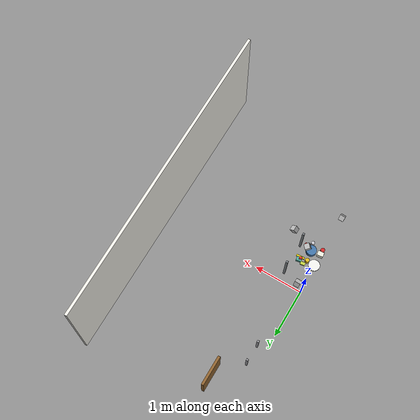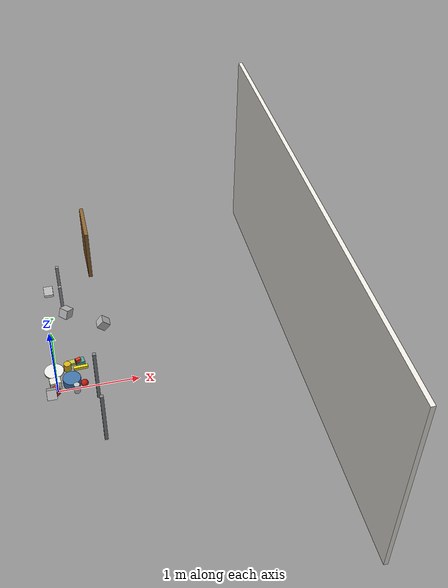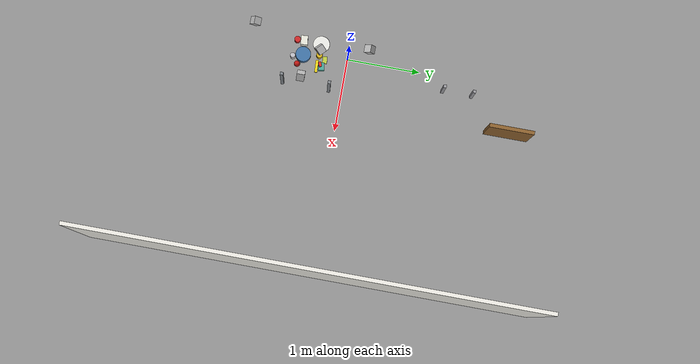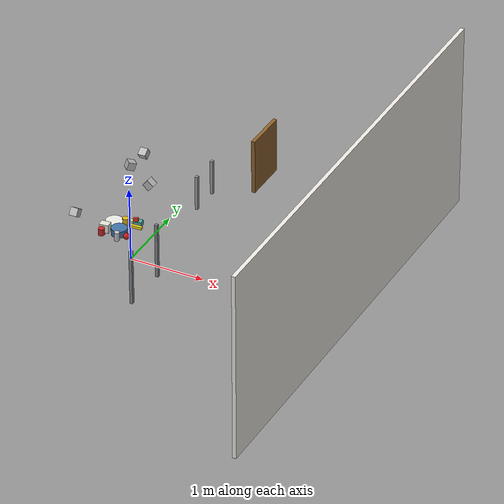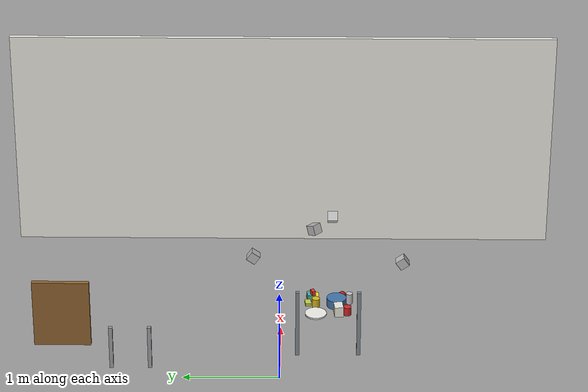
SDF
<sdf version="1.10">
 <world name="bps_room">
  <model name="wall_east">
   <static>true</static>
   <pose>3 0 1.25 0 0 0</pose>
   <link name="link">
    <collision name="collision">
     <geometry><box><size>0.050000000000000003 6 2.5</size></box></geometry>
    </collision>
    <visual name="visual">
     <geometry><box><size>0.050000000000000003 6 2.5</size></box></geometry>
     <material>
      <ambient>0.930000007 0.920000017 0.889999986 1</ambient>
      <diffuse>0.930000007 0.920000017 0.889999986 1</diffuse>
     </material>
    </visual>
    <inertial>
     <mass>1</mass>
     <inertia><ixx>1</ixx><ixy>0</ixy><ixz>0</ixz><iyy>1</iyy><iyz>0</iyz><izz>1</izz></inertia>
    </inertial>
   </link>
  </model>
  <model name="desk_leg_right">
   <static>true</static>
   <pose>0.65000000000000002 2.2999999999999998 0.375 0 0 0</pose>
   <link name="link">
    <collision name="collision">
     <geometry><box><size>0.050000000000000003 0.59999999999999998 0.75</size></box></geometry>
    </collision>
    <visual name="visual">
     <geometry><box><size>0.050000000000000003 0.59999999999999998 0.75</size></box></geometry>
     <material>
      <ambient>0.550000012 0.379999995 0.180000007 1</ambient>
      <diffuse>0.550000012 0.379999995 0.180000007 1</diffuse>
     </material>
    </visual>
    <inertial>
     <mass>1</mass>
     <inertia><ixx>1</ixx><ixy>0</ixy><ixz>0</ixz><iyy>1</iyy><iyz>0</iyz><izz>1</izz></inertia>
    </inertial>
   </link>
  </model>
  <model name="chair_leg_fr">
   <static>true</static>
   <pose>0.20000000000000001 1.3500000000000001 0.23999999999999999 0 0 0</pose>
   <link name="link">
    <collision name="collision">
     <geometry><box><size>0.040000000000000001 0.040000000000000001 0.47999999999999998</size></box></geometry>
    </collision>
    <visual name="visual">
     <geometry><box><size>0.040000000000000001 0.040000000000000001 0.47999999999999998</size></box></geometry>
     <material>
      <ambient>0.600000024 0.600000024 0.620000005 1</ambient>
      <diffuse>0.600000024 0.600000024 0.620000005 1</diffuse>
     </material>
    </visual>
    <inertial>
     <mass>1</mass>
     <inertia><ixx>1</ixx><ixy>0</ixy><ixz>0</ixz><iyy>1</iyy><iyz>0</iyz><izz>1</izz></inertia>
    </inertial>
   </link>
  </model>
  <model name="chair_leg_br">
   <static>true</static>
   <pose>0.20000000000000001 1.75 0.23999999999999999 0 0 0</pose>
   <link name="link">
    <collision name="collision">
     <geometry><box><size>0.040000000000000001 0.040000000000000001 0.47999999999999998</size></box></geometry>
    </collision>
    <visual name="visual">
     <geometry><box><size>0.040000000000000001 0.040000000000000001 0.47999999999999998</size></box></geometry>
     <material>
      <ambient>0.600000024 0.600000024 0.620000005 1</ambient>
      <diffuse>0.600000024 0.600000024 0.620000005 1</diffuse>
     </material>
    </visual>
    <inertial>
     <mass>1</mass>
     <inertia><ixx>1</ixx><ixy>0</ixy><ixz>0</ixz><iyy>1</iyy><iyz>0</iyz><izz>1</izz></inertia>
    </inertial>
   </link>
  </model>
  <model name="table_leg_fr">
   <static>true</static>
   <pose>0.46999999999999997 -0.81999999999999995 0.375 0 0 0</pose>
   <link name="link">
    <collision name="collision">
     <geometry><box><size>0.040000000000000001 0.040000000000000001 0.75</size></box></geometry>
    </collision>
    <visual name="visual">
     <geometry><box><size>0.040000000000000001 0.040000000000000001 0.75</size></box></geometry>
     <material>
      <ambient>0.5 0.519999981 0.540000021 1</ambient>
      <diffuse>0.5 0.519999981 0.540000021 1</diffuse>
     </material>
    </visual>
    <inertial>
     <mass>1</mass>
     <inertia><ixx>1</ixx><ixy>0</ixy><ixz>0</ixz><iyy>1</iyy><iyz>0</iyz><izz>1</izz></inertia>
    </inertial>
   </link>
  </model>
  <model name="table_leg_br">
   <static>true</static>
   <pose>0.46999999999999997 -0.17999999999999999 0.375 0 0 0</pose>
   <link name="link">
    <collision name="collision">
     <geometry><box><size>0.040000000000000001 0.040000000000000001 0.75</size></box></geometry>
    </collision>
    <visual name="visual">
     <geometry><box><size>0.040000000000000001 0.040000000000000001 0.75</size></box></geometry>
     <material>
      <ambient>0.5 0.519999981 0.540000021 1</ambient>
      <diffuse>0.5 0.519999981 0.540000021 1</diffuse>
     </material>
    </visual>
    <inertial>
     <mass>1</mass>
     <inertia><ixx>1</ixx><ixy>0</ixy><ixz>0</ixz><iyy>1</iyy><iyz>0</iyz><izz>1</izz></inertia>
    </inertial>
   </link>
  </model>
  <model name="obj_tissue_box">
   <static>false</static>
   <pose>0 -0.59999999999999998 0.82499999999999996 0 0 0.09999999999999995</pose>
   <link name="link">
    <collision name="collision">
     <geometry><box><size>0.12 0.089999999999999997 0.11</size></box></geometry>
    </collision>
    <visual name="visual">
     <geometry><box><size>0.12 0.089999999999999997 0.11</size></box></geometry>
     <material>
      <ambient>0.899999976 0.899999976 0.850000024 1</ambient>
      <diffuse>0.899999976 0.899999976 0.850000024 1</diffuse>
     </material>
     <plugin name="gz::sim::systems::Label" filename="gz-sim-label-system"><label>4</label></plugin>
    </visual>
    <inertial>
     <mass>1</mass>
     <inertia><ixx>1</ixx><ixy>0</ixy><ixz>0</ixz><iyy>1</iyy><iyz>0</iyz><izz>1</izz></inertia>
    </inertial>
    <sensor name="obj_tissue_box_contact_sensor" type="contact">
     <contact><collision>collision</collision></contact>
     <update_rate>30</update_rate>
     <always_on>true</always_on>
    </sensor>
   </link>
  </model>
  <model name="obj_cup">
   <static>false</static>
   <pose>0 -0.68999999999999995 0.81499999999999995 0 0 0</pose>
   <link name="link">
    <collision name="collision">
     <geometry>
      <cylinder><radius>0.040000000000000001</radius><length>0.089999999999999997</length></cylinder>
     </geometry>
    </collision>
    <visual name="visual">
     <geometry>
      <cylinder><radius>0.040000000000000001</radius><length>0.089999999999999997</length></cylinder>
     </geometry>
     <material>
      <ambient>0.800000012 0.150000006 0.150000006 1</ambient>
      <diffuse>0.800000012 0.150000006 0.150000006 1</diffuse>
      <specular>0.400000006 0.400000006 0.400000006 1</specular>
     </material>
     <plugin name="gz::sim::systems::Label" filename="gz-sim-label-system"><label>5</label></plugin>
    </visual>
    <inertial>
     <mass>1</mass>
     <inertia><ixx>1</ixx><ixy>0</ixy><ixz>0</ixz><iyy>1</iyy><iyz>0</iyz><izz>1</izz></inertia>
    </inertial>
    <sensor name="obj_cup_contact_sensor" type="contact">
     <contact><collision>collision</collision></contact>
     <update_rate>30</update_rate>
     <always_on>true</always_on>
    </sensor>
   </link>
  </model>
  <model name="obj_bowl">
   <static>false</static>
   <pose>0.18260000000000001 -0.58120000000000005 0.81499999999999995 0 0 0</pose>
   <link name="link">
    <collision name="collision">
     <geometry>
      <cylinder><radius>0.10000000000000001</radius><length>0.089999999999999997</length></cylinder>
     </geometry>
    </collision>
    <visual name="visual">
     <geometry>
      <cylinder><radius>0.10000000000000001</radius><length>0.089999999999999997</length></cylinder>
     </geometry>
     <material>
      <ambient>0.25 0.449999988 0.649999976 1</ambient>
      <diffuse>0.25 0.449999988 0.649999976 1</diffuse>
      <specular>0.300000012 0.300000012 0.300000012 1</specular>
     </material>
     <plugin name="gz::sim::systems::Label" filename="gz-sim-label-system"><label>6</label></plugin>
    </visual>
    <inertial>
     <mass>1</mass>
     <inertia><ixx>1</ixx><ixy>0</ixy><ixz>0</ixz><iyy>1</iyy><iyz>0</iyz><izz>1</izz></inertia>
    </inertial>
    <sensor name="obj_bowl_contact_sensor" type="contact">
     <contact><collision>collision</collision></contact>
     <update_rate>30</update_rate>
     <always_on>true</always_on>
    </sensor>
   </link>
  </model>
  <model name="obj_apple">
   <static>false</static>
   <pose>0.315 -0.6401 0.81000000000000005 0 0 0</pose>
   <link name="link">
    <collision name="collision">
     <geometry><sphere><radius>0.040000000000000001</radius></sphere></geometry>
    </collision>
    <visual name="visual">
     <geometry><sphere><radius>0.040000000000000001</radius></sphere></geometry>
     <material>
      <ambient>0.75 0.100000001 0.0799999982 1</ambient>
      <diffuse>0.75 0.100000001 0.0799999982 1</diffuse>
      <specular>0.5 0.5 0.5 1</specular>
     </material>
     <plugin name="gz::sim::systems::Label" filename="gz-sim-label-system"><label>7</label></plugin>
    </visual>
    <inertial>
     <mass>1</mass>
     <inertia><ixx>1</ixx><ixy>0</ixy><ixz>0</ixz><iyy>1</iyy><iyz>0</iyz><izz>1</izz></inertia>
    </inertial>
    <sensor name="obj_apple_contact_sensor" type="contact">
     <contact><collision>collision</collision></contact>
     <update_rate>30</update_rate>
     <always_on>true</always_on>
    </sensor>
   </link>
  </model>
  <model name="obj_can">
   <static>false</static>
   <pose>0.22409999999999999 -0.71289999999999998 0.82750000000000001 0 0 0</pose>
   <link name="link">
    <collision name="collision">
     <geometry><cylinder><radius>0.033000000000000002</radius><length>0.115</length></cylinder></geometry>
    </collision>
    <visual name="visual">
     <geometry><cylinder><radius>0.033000000000000002</radius><length>0.115</length></cylinder></geometry>
     <material>
      <ambient>0.75 0.75 0.779999971 1</ambient>
      <diffuse>0.75 0.75 0.779999971 1</diffuse>
      <specular>0.699999988 0.699999988 0.699999988 1</specular>
     </material>
     <plugin name="gz::sim::systems::Label" filename="gz-sim-label-system"><label>8</label></plugin>
    </visual>
    <inertial>
     <mass>1</mass>
     <inertia><ixx>1</ixx><ixy>0</ixy><ixz>0</ixz><iyy>1</iyy><iyz>0</iyz><izz>1</izz></inertia>
    </inertial>
    <sensor name="obj_can_contact_sensor" type="contact">
     <contact><collision>collision</collision></contact>
     <update_rate>30</update_rate>
     <always_on>true</always_on>
    </sensor>
   </link>
  </model>
  <model name="obj_plate">
   <static>false</static>
   <pose>0 -0.37 0.77749999999999997 0 0 0</pose>
   <link name="link">
    <collision name="collision">
     <geometry><cylinder><radius>0.11</radius><length>0.014999999999999999</length></cylinder></geometry>
    </collision>
    <visual name="visual">
     <geometry><cylinder><radius>0.11</radius><length>0.014999999999999999</length></cylinder></geometry>
     <material>
      <ambient>0.920000017 0.920000017 0.899999976 1</ambient>
      <diffuse>0.920000017 0.920000017 0.899999976 1</diffuse>
     </material>
     <plugin name="gz::sim::systems::Label" filename="gz-sim-label-system"><label>12</label></plugin>
    </visual>
    <inertial>
     <mass>1</mass>
     <inertia><ixx>1</ixx><ixy>0</ixy><ixz>0</ixz><iyy>1</iyy><iyz>0</iyz><izz>1</izz></inertia>
    </inertial>
    <sensor name="obj_plate_contact_sensor" type="contact">
     <contact><collision>collision</collision></contact>
     <update_rate>30</update_rate>
     <always_on>true</always_on>
    </sensor>
   </link>
  </model>
  <model name="obj_mug">
   <static>false</static>
   <pose>0.155 -0.37 0.8175 0 0 0</pose>
   <link name="link">
    <collision name="collision">
     <geometry>
      <cylinder><radius>0.040000000000000001</radius><length>0.095000000000000001</length></cylinder>
     </geometry>
    </collision>
    <visual name="visual">
     <geometry>
      <cylinder><radius>0.040000000000000001</radius><length>0.095000000000000001</length></cylinder>
     </geometry>
     <material>
      <ambient>0.850000024 0.699999988 0.100000001 1</ambient>
      <diffuse>0.850000024 0.699999988 0.100000001 1</diffuse>
      <specular>0.300000012 0.300000012 0.300000012 1</specular>
     </material>
     <plugin name="gz::sim::systems::Label" filename="gz-sim-label-system"><label>13</label></plugin>
    </visual>
    <inertial>
     <mass>1</mass>
     <inertia><ixx>1</ixx><ixy>0</ixy><ixz>0</ixz><iyy>1</iyy><iyz>0</iyz><izz>1</izz></inertia>
    </inertial>
    <sensor name="obj_mug_contact_sensor" type="contact">
     <contact><collision>collision</collision></contact>
     <update_rate>30</update_rate>
     <always_on>true</always_on>
    </sensor>
   </link>
  </model>
  <model name="obj_sponge">
   <static>false</static>
   <pose>0.20000000000000001 -0.28999999999999998 0.78500000000000003 0 0 0.09999999999999995</pose>
   <link name="link">
    <collision name="collision">
     <geometry><box><size>0.089999999999999997 0.059999999999999998 0.029999999999999999</size></box></geometry>
    </collision>
    <visual name="visual">
     <geometry><box><size>0.089999999999999997 0.059999999999999998 0.029999999999999999</size></box></geometry>
     <material><ambient>0.75 0.800000012 0.25 1</ambient><diffuse>0.75 0.800000012 0.25 1</diffuse></material>
     <plugin name="gz::sim::systems::Label" filename="gz-sim-label-system"><label>14</label></plugin>
    </visual>
    <inertial>
     <mass>1</mass>
     <inertia><ixx>1</ixx><ixy>0</ixy><ixz>0</ixz><iyy>1</iyy><iyz>0</iyz><izz>1</izz></inertia>
    </inertial>
    <sensor name="obj_sponge_contact_sensor" type="contact">
     <contact><collision>collision</collision></contact>
     <update_rate>30</update_rate>
     <always_on>true</always_on>
    </sensor>
   </link>
  </model>
  <model name="obj_container">
   <static>false</static>
   <pose>0.29999999999999999 -0.32000000000000001 0.80500000000000005 0 0 0.14999999999999988</pose>
   <link name="link">
    <collision name="collision">
     <geometry><box><size>0.10000000000000001 0.080000000000000002 0.070000000000000007</size></box></geometry>
    </collision>
    <visual name="visual">
     <geometry><box><size>0.10000000000000001 0.080000000000000002 0.070000000000000007</size></box></geometry>
     <material>
      <ambient>0.300000012 0.649999976 0.600000024 1</ambient>
      <diffuse>0.300000012 0.649999976 0.600000024 1</diffuse>
      <specular>0.400000006 0.400000006 0.400000006 1</specular>
     </material>
     <plugin name="gz::sim::systems::Label" filename="gz-sim-label-system"><label>15</label></plugin>
    </visual>
    <inertial>
     <mass>1</mass>
     <inertia><ixx>1</ixx><ixy>0</ixy><ixz>0</ixz><iyy>1</iyy><iyz>0</iyz><izz>1</izz></inertia>
    </inertial>
    <sensor name="obj_container_contact_sensor" type="contact">
     <contact><collision>collision</collision></contact>
     <update_rate>30</update_rate>
     <always_on>true</always_on>
    </sensor>
   </link>
  </model>
  <model name="obj_toy">
   <static>false</static>
   <pose>0.28000000000000003 -0.34000000000000002 0.86250000000000004 0 0 0.39999999999999997</pose>
   <link name="link">
    <collision name="collision">
     <geometry><box><size>0.059999999999999998 0.035000000000000003 0.044999999999999998</size></box></geometry>
    </collision>
    <visual name="visual">
     <geometry><box><size>0.059999999999999998 0.035000000000000003 0.044999999999999998</size></box></geometry>
     <material>
      <ambient>0.899999976 0.200000003 0.150000006 1</ambient>
      <diffuse>0.899999976 0.200000003 0.150000006 1</diffuse>
      <specular>0.5 0.5 0.5 1</specular>
     </material>
     <plugin name="gz::sim::systems::Label" filename="gz-sim-label-system"><label>16</label></plugin>
    </visual>
    <inertial>
     <mass>1</mass>
     <inertia><ixx>1</ixx><ixy>0</ixy><ixz>0</ixz><iyy>1</iyy><iyz>0</iyz><izz>1</izz></inertia>
    </inertial>
    <sensor name="obj_toy_contact_sensor" type="contact">
     <contact><collision>collision</collision></contact>
     <update_rate>30</update_rate>
     <always_on>true</always_on>
    </sensor>
   </link>
  </model>
  <model name="obj_banana">
   <static>false</static>
   <pose>0.29999999999999999 -0.38250000000000001 0.78749999999999998 0 0 0.049999999999999989</pose>
   <link name="link">
    <collision name="collision">
     <geometry><box><size>0.16 0.035000000000000003 0.035000000000000003</size></box></geometry>
    </collision>
    <visual name="visual">
     <geometry><box><size>0.16 0.035000000000000003 0.035000000000000003</size></box></geometry>
     <material>
      <ambient>0.949999988 0.850000024 0.100000001 1</ambient>
      <diffuse>0.949999988 0.850000024 0.100000001 1</diffuse>
      <specular>0.200000003 0.200000003 0.200000003 1</specular>
     </material>
     <plugin name="gz::sim::systems::Label" filename="gz-sim-label-system"><label>17</label></plugin>
    </visual>
    <inertial>
     <mass>1</mass>
     <inertia><ixx>1</ixx><ixy>0</ixy><ixz>0</ixz><iyy>1</iyy><iyz>0</iyz><izz>1</izz></inertia>
    </inertial>
    <sensor name="obj_banana_contact_sensor" type="contact">
     <contact><collision>collision</collision></contact>
     <update_rate>30</update_rate>
     <always_on>true</always_on>
    </sensor>
   </link>
  </model>
  <model name="depth_camera_v2">
   <static>true</static>
   <pose>0.6610640802747747 -0.4859588235294118 1.582838560766037 0.0 0.8726646259971648 3.141592653589793</pose>
   <link name="link">
    <pose>0.050000000000000003 0.050000000000000003 0.050000000000000003 0 0 0</pose>
    <inertial>
     <mass>0.10000000000000001</mass>
     <inertia>
      <ixx>0.00016666700000000001</ixx>
      <iyy>0.00016666700000000001</iyy>
      <izz>0.00016666700000000001</izz>
      <ixy>0</ixy>
      <ixz>0</ixz>
      <iyz>0</iyz>
     </inertia>
    </inertial>
    <collision name="collision">
     <geometry><box><size>0.10000000000000001 0.10000000000000001 0.10000000000000001</size></box></geometry>
    </collision>
    <visual name="visual">
     <geometry><box><size>0.10000000000000001 0.10000000000000001 0.10000000000000001</size></box></geometry>
    </visual>
    <sensor name="depth_camera2" type="depth_camera">
     <topic>depth_camera_v2</topic>
     <update_rate>10</update_rate>
     <enable_metrics>false</enable_metrics>
     <camera>
      <horizontal_fov>1.2</horizontal_fov>
      <image>
       <width>640</width>
       <height>480</height>
       <format>R_FLOAT32</format>
       <anti_aliasing>4</anti_aliasing>
      </image>
      <camera_info_topic>__default__</camera_info_topic>
      <triggered>false</triggered>
      <clip><near>0.10000000000000001</near><far>2</far></clip>
      <save enabled="false"><path>__default__</path></save>
      <visibility_mask>4294967295</visibility_mask>
      <noise><type>none</type><mean>0</mean><stddev>0</stddev></noise>
      <distortion><k1>0</k1><k2>0</k2><k3>0</k3><p1>0</p1><p2>0</p2><center>0.5 0.5</center></distortion>
      <lens>
       <type>stereographic</type>
       <scale_to_hfov>true</scale_to_hfov>
       <cutoff_angle>1.5707963267948966</cutoff_angle>
       <env_texture_size>256</env_texture_size>
      </lens>
     </camera>
    </sensor>
    <sensor name="rgb_camera2" type="camera">
     <topic>rgb_camera_v2</topic>
     <update_rate>10</update_rate>
     <enable_metrics>false</enable_metrics>
     <camera>
      <horizontal_fov>1.2</horizontal_fov>
      <image><width>640</width><height>480</height><format>RGB_INT8</format><anti_aliasing>4</anti_aliasing></image>
      <camera_info_topic>__default__</camera_info_topic>
      <triggered>false</triggered>
      <clip><near>0.10000000000000001</near><far>2</far></clip>
      <save enabled="false"><path>__default__</path></save>
      <visibility_mask>4294967295</visibility_mask>
      <noise><type>none</type><mean>0</mean><stddev>0</stddev></noise>
      <distortion><k1>0</k1><k2>0</k2><k3>0</k3><p1>0</p1><p2>0</p2><center>0.5 0.5</center></distortion>
      <lens>
       <type>stereographic</type>
       <scale_to_hfov>true</scale_to_hfov>
       <cutoff_angle>1.5707963267948966</cutoff_angle>
       <env_texture_size>256</env_texture_size>
      </lens>
     </camera>
    </sensor>
    <sensor name="semantic_camera2" type="segmentation_camera">
     <topic>semantic_camera_v2</topic>
     <update_rate>10</update_rate>
     <enable_metrics>false</enable_metrics>
     <camera>
      <horizontal_fov>1.2</horizontal_fov>
      <image><width>640</width><height>480</height></image>
      <clip><near>0.1</near><far>100</far></clip>
      <segmentation_type>semantic</segmentation_type>
     </camera>
    </sensor>
   </link>
  </model>
  <model name="depth_camera_v3">
   <static>true</static>
   <pose>0.018276470588235345 0.33319322075958 1.390370553998105 -0.0 0.6108652381980154 -1.5707963267948968</pose>
   <link name="link">
    <pose>0.050000000000000003 0.050000000000000003 0.050000000000000003 0 0 0</pose>
    <inertial>
     <mass>0.10000000000000001</mass>
     <inertia>
      <ixx>0.00016666700000000001</ixx>
      <iyy>0.00016666700000000001</iyy>
      <izz>0.00016666700000000001</izz>
      <ixy>0</ixy>
      <ixz>0</ixz>
      <iyz>0</iyz>
     </inertia>
    </inertial>
    <collision name="collision">
     <geometry><box><size>0.10000000000000001 0.10000000000000001 0.10000000000000001</size></box></geometry>
    </collision>
    <visual name="visual">
     <geometry><box><size>0.10000000000000001 0.10000000000000001 0.10000000000000001</size></box></geometry>
    </visual>
    <sensor name="depth_camera3" type="depth_camera">
     <topic>depth_camera_v3</topic>
     <update_rate>10</update_rate>
     <enable_metrics>false</enable_metrics>
     <camera>
      <horizontal_fov>1.2</horizontal_fov>
      <image>
       <width>640</width>
       <height>480</height>
       <format>R_FLOAT32</format>
       <anti_aliasing>4</anti_aliasing>
      </image>
      <camera_info_topic>__default__</camera_info_topic>
      <triggered>false</triggered>
      <clip><near>0.10000000000000001</near><far>2</far></clip>
      <save enabled="false"><path>__default__</path></save>
      <visibility_mask>4294967295</visibility_mask>
      <noise><type>none</type><mean>0</mean><stddev>0</stddev></noise>
      <distortion><k1>0</k1><k2>0</k2><k3>0</k3><p1>0</p1><p2>0</p2><center>0.5 0.5</center></distortion>
      <lens>
       <type>stereographic</type>
       <scale_to_hfov>true</scale_to_hfov>
       <cutoff_angle>1.5707963267948966</cutoff_angle>
       <env_texture_size>256</env_texture_size>
      </lens>
     </camera>
    </sensor>
    <sensor name="rgb_camera3" type="camera">
     <topic>rgb_camera_v3</topic>
     <update_rate>10</update_rate>
     <enable_metrics>false</enable_metrics>
     <camera>
      <horizontal_fov>1.2</horizontal_fov>
      <image><width>640</width><height>480</height><format>RGB_INT8</format><anti_aliasing>4</anti_aliasing></image>
      <camera_info_topic>__default__</camera_info_topic>
      <triggered>false</triggered>
      <clip><near>0.10000000000000001</near><far>2</far></clip>
      <save enabled="false"><path>__default__</path></save>
      <visibility_mask>4294967295</visibility_mask>
      <noise><type>none</type><mean>0</mean><stddev>0</stddev></noise>
      <distortion><k1>0</k1><k2>0</k2><k3>0</k3><p1>0</p1><p2>0</p2><center>0.5 0.5</center></distortion>
      <lens>
       <type>stereographic</type>
       <scale_to_hfov>true</scale_to_hfov>
       <cutoff_angle>1.5707963267948966</cutoff_angle>
       <env_texture_size>256</env_texture_size>
      </lens>
     </camera>
    </sensor>
    <sensor name="semantic_camera3" type="segmentation_camera">
     <topic>semantic_camera_v3</topic>
     <update_rate>10</update_rate>
     <enable_metrics>false</enable_metrics>
     <camera>
      <horizontal_fov>1.2</horizontal_fov>
      <image><width>640</width><height>480</height></image>
      <clip><near>0.1</near><far>100</far></clip>
      <segmentation_type>semantic</segmentation_type>
     </camera>
    </sensor>
   </link>
  </model>
  <model name="depth_camera_v5">
   <static>true</static>
   <pose>0.018276470588235148 -1.3051108678184036 1.390370553998105 -0.0 0.6108652381980154 1.5707963267948963</pose>
   <link name="link">
    <pose>0.050000000000000003 0.050000000000000003 0.050000000000000003 0 0 0</pose>
    <inertial>
     <mass>0.10000000000000001</mass>
     <inertia>
      <ixx>0.00016666700000000001</ixx>
      <iyy>0.00016666700000000001</iyy>
      <izz>0.00016666700000000001</izz>
      <ixy>0</ixy>
      <ixz>0</ixz>
      <iyz>0</iyz>
     </inertia>
    </inertial>
    <collision name="collision">
     <geometry><box><size>0.10000000000000001 0.10000000000000001 0.10000000000000001</size></box></geometry>
    </collision>
    <visual name="visual">
     <geometry><box><size>0.10000000000000001 0.10000000000000001 0.10000000000000001</size></box></geometry>
    </visual>
    <sensor name="depth_camera5" type="depth_camera">
     <topic>depth_camera_v5</topic>
     <update_rate>10</update_rate>
     <enable_metrics>false</enable_metrics>
     <camera>
      <horizontal_fov>1.2</horizontal_fov>
      <image>
       <width>640</width>
       <height>480</height>
       <format>R_FLOAT32</format>
       <anti_aliasing>4</anti_aliasing>
      </image>
      <camera_info_topic>__default__</camera_info_topic>
      <triggered>false</triggered>
      <clip><near>0.10000000000000001</near><far>2</far></clip>
      <save enabled="false"><path>__default__</path></save>
      <visibility_mask>4294967295</visibility_mask>
      <noise><type>none</type><mean>0</mean><stddev>0</stddev></noise>
      <distortion><k1>0</k1><k2>0</k2><k3>0</k3><p1>0</p1><p2>0</p2><center>0.5 0.5</center></distortion>
      <lens>
       <type>stereographic</type>
       <scale_to_hfov>true</scale_to_hfov>
       <cutoff_angle>1.5707963267948966</cutoff_angle>
       <env_texture_size>256</env_texture_size>
      </lens>
     </camera>
    </sensor>
    <sensor name="rgb_camera5" type="camera">
     <topic>rgb_camera_v5</topic>
     <update_rate>10</update_rate>
     <enable_metrics>false</enable_metrics>
     <camera>
      <horizontal_fov>1.2</horizontal_fov>
      <image><width>640</width><height>480</height><format>RGB_INT8</format><anti_aliasing>4</anti_aliasing></image>
      <camera_info_topic>__default__</camera_info_topic>
      <triggered>false</triggered>
      <clip><near>0.10000000000000001</near><far>2</far></clip>
      <save enabled="false"><path>__default__</path></save>
      <visibility_mask>4294967295</visibility_mask>
      <noise><type>none</type><mean>0</mean><stddev>0</stddev></noise>
      <distortion><k1>0</k1><k2>0</k2><k3>0</k3><p1>0</p1><p2>0</p2><center>0.5 0.5</center></distortion>
      <lens>
       <type>stereographic</type>
       <scale_to_hfov>true</scale_to_hfov>
       <cutoff_angle>1.5707963267948966</cutoff_angle>
       <env_texture_size>256</env_texture_size>
      </lens>
     </camera>
    </sensor>
    <sensor name="semantic_camera5" type="segmentation_camera">
     <topic>semantic_camera_v5</topic>
     <update_rate>10</update_rate>
     <enable_metrics>false</enable_metrics>
     <camera>
      <horizontal_fov>1.2</horizontal_fov>
      <image><width>640</width><height>480</height></image>
      <clip><near>0.1</near><far>100</far></clip>
      <segmentation_type>semantic</segmentation_type>
     </camera>
    </sensor>
   </link>
  </model>
  <model name="depth_camera_v6">
   <static>true</static>
   <pose>0.2359367569714131 -0.268298537146234 1.6625174763543764 -0.0 1.2217304763960306 -2.356194490192345</pose>
   <link name="link">
    <pose>0.050000000000000003 0.050000000000000003 0.050000000000000003 0 0 0</pose>
    <inertial>
     <mass>0.10000000000000001</mass>
     <inertia>
      <ixx>0.00016666700000000001</ixx>
      <iyy>0.00016666700000000001</iyy>
      <izz>0.00016666700000000001</izz>
      <ixy>0</ixy>
      <ixz>0</ixz>
      <iyz>0</iyz>
     </inertia>
    </inertial>
    <collision name="collision">
     <geometry><box><size>0.10000000000000001 0.10000000000000001 0.10000000000000001</size></box></geometry>
    </collision>
    <visual name="visual">
     <geometry><box><size>0.10000000000000001 0.10000000000000001 0.10000000000000001</size></box></geometry>
    </visual>
    <sensor name="depth_camera6" type="depth_camera">
     <topic>depth_camera_v6</topic>
     <update_rate>10</update_rate>
     <enable_metrics>false</enable_metrics>
     <camera>
      <horizontal_fov>1.2</horizontal_fov>
      <image>
       <width>640</width>
       <height>480</height>
       <format>R_FLOAT32</format>
       <anti_aliasing>4</anti_aliasing>
      </image>
      <camera_info_topic>__default__</camera_info_topic>
      <triggered>false</triggered>
      <clip><near>0.10000000000000001</near><far>2</far></clip>
      <save enabled="false"><path>__default__</path></save>
      <visibility_mask>4294967295</visibility_mask>
      <noise><type>none</type><mean>0</mean><stddev>0</stddev></noise>
      <distortion><k1>0</k1><k2>0</k2><k3>0</k3><p1>0</p1><p2>0</p2><center>0.5 0.5</center></distortion>
      <lens>
       <type>stereographic</type>
       <scale_to_hfov>true</scale_to_hfov>
       <cutoff_angle>1.5707963267948966</cutoff_angle>
       <env_texture_size>256</env_texture_size>
      </lens>
     </camera>
    </sensor>
    <sensor name="rgb_camera6" type="camera">
     <topic>rgb_camera_v6</topic>
     <update_rate>10</update_rate>
     <enable_metrics>false</enable_metrics>
     <camera>
      <horizontal_fov>1.2</horizontal_fov>
      <image><width>640</width><height>480</height><format>RGB_INT8</format><anti_aliasing>4</anti_aliasing></image>
      <camera_info_topic>__default__</camera_info_topic>
      <triggered>false</triggered>
      <clip><near>0.10000000000000001</near><far>2</far></clip>
      <save enabled="false"><path>__default__</path></save>
      <visibility_mask>4294967295</visibility_mask>
      <noise><type>none</type><mean>0</mean><stddev>0</stddev></noise>
      <distortion><k1>0</k1><k2>0</k2><k3>0</k3><p1>0</p1><p2>0</p2><center>0.5 0.5</center></distortion>
      <lens>
       <type>stereographic</type>
       <scale_to_hfov>true</scale_to_hfov>
       <cutoff_angle>1.5707963267948966</cutoff_angle>
       <env_texture_size>256</env_texture_size>
      </lens>
     </camera>
    </sensor>
    <sensor name="semantic_camera6" type="segmentation_camera">
     <topic>semantic_camera_v6</topic>
     <update_rate>10</update_rate>
     <enable_metrics>false</enable_metrics>
     <camera>
      <horizontal_fov>1.2</horizontal_fov>
      <image><width>640</width><height>480</height></image>
      <clip><near>0.1</near><far>100</far></clip>
      <segmentation_type>semantic</segmentation_type>
     </camera>
    </sensor>
   </link>
  </model>
 </world>
</sdf>
